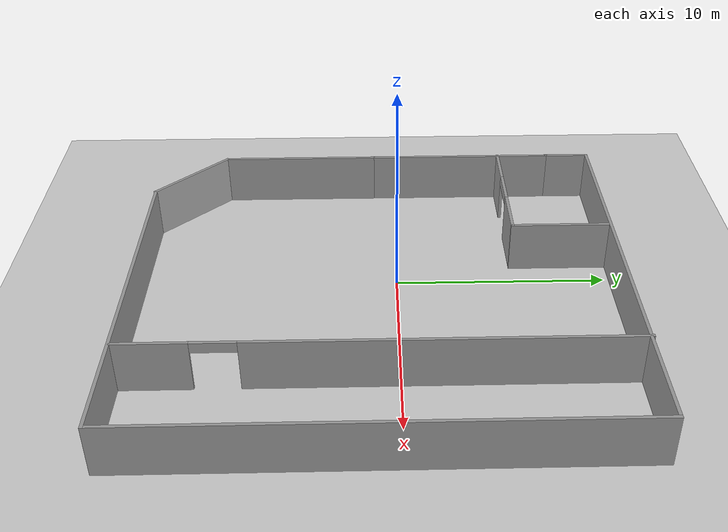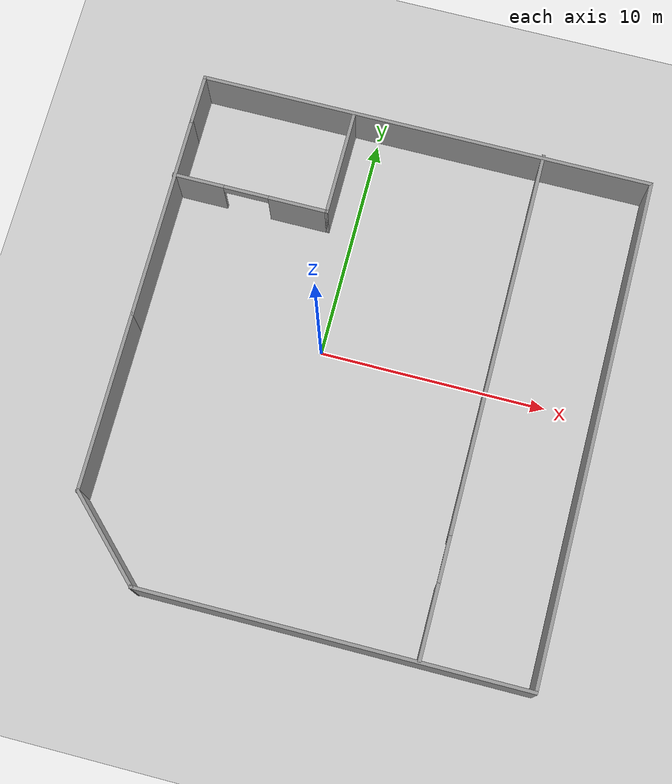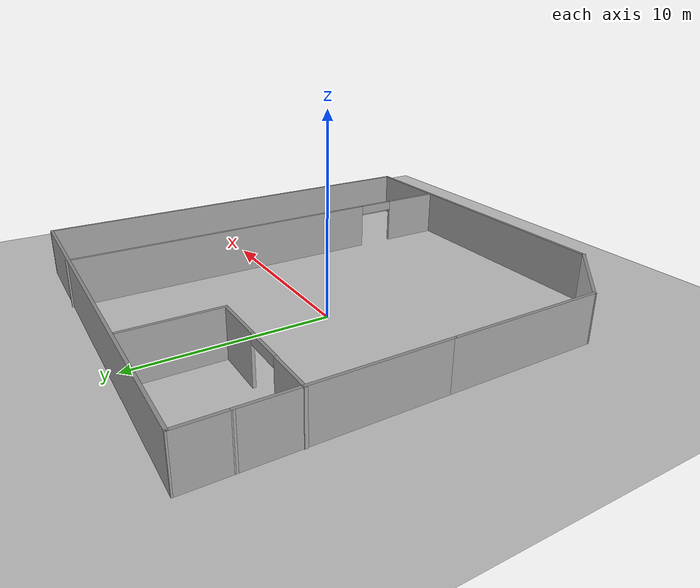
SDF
<sdf version="1.7">
 <world name="default">
  <light name="sun" type="directional">
   <pose>0 0 10 0 -0 0</pose>
   <diffuse>0.8 0.8 0.8 1</diffuse>
   <specular>0.2 0.2 0.2 1</specular>
   <attenuation>
    <range>1000</range>
    <constant>0.9</constant>
    <linear>0.01</linear>
    <quadratic>0.001</quadratic>
   </attenuation>
   <direction>-0.5 0.1 -0.9</direction>
   <spot><inner_angle>0</inner_angle><outer_angle>0</outer_angle><falloff>0</falloff></spot>
  </light>
  <model name="ground_plane">
   <static>1</static>
   <link name="link">
    <collision name="collision">
     <geometry><plane><normal>0 0 1</normal><size>100 100</size></plane></geometry>
     <surface><friction><ode><mu>100</mu><mu2>50</mu2></ode></friction></surface>
    </collision>
    <visual name="visual">
     <cast_shadows>0</cast_shadows>
     <geometry><plane><normal>0 0 1</normal><size>100 100</size></plane></geometry>
     <material>
      <script><uri>file://media/materials/scripts/gazebo.material</uri><name>Gazebo/Grey</name></script>
     </material>
    </visual>
   </link>
  </model>
  <plugin name="ros_interface_plugin" filename="librotors_gazebo_ros_interface_plugin.so"/>
  <plugin name="gazebo_ros_state" filename="libgazebo_ros_state.so"/>
  <gravity>0 0 -9.8</gravity>
  <magnetic_field>6e-06 2.3e-05 -4.2e-05</magnetic_field>
  <atmosphere type="adiabatic"/>
  <physics type="ode">
   <max_step_size>0.001</max_step_size>
   <real_time_factor>1</real_time_factor>
   <real_time_update_rate>1000</real_time_update_rate>
  </physics>
  <scene><ambient>0.4 0.4 0.4 1</ambient><background>0.7 0.7 0.7 1</background><shadows>1</shadows></scene>
  <audio><device>default</device></audio>
  <spherical_coordinates>
   <surface_model>EARTH_WGS84</surface_model>
   <latitude_deg>0</latitude_deg>
   <longitude_deg>0</longitude_deg>
   <elevation>0</elevation>
   <heading_deg>0</heading_deg>
  </spherical_coordinates>
  <model name="test_room">
   <pose>2.05184 -0.832701 0 0 -0 0</pose>
   <link name="Wall_0">
    <collision name="Wall_0_Collision">
     <geometry><box><size>9.25 0.15 2.5</size></box></geometry>
     <pose>0 0 1.25 0 -0 0</pose>
    </collision>
    <visual name="Wall_0_Visual">
     <pose>0 0 1.25 0 -0 0</pose>
     <geometry><box><size>9.25 0.15 2.5</size></box></geometry>
     <material>
      <script><uri>file://media/materials/scripts/gazebo.material</uri><name>Gazebo/Grey</name></script>
      <ambient>1 1 1 1</ambient>
     </material>
     <meta><layer>0</layer></meta>
    </visual>
    <pose>-10.0318 4.4527 0 0 -0 1.5708</pose>
   </link>
   <link name="Wall_14">
    <collision name="Wall_14_Collision">
     <geometry><box><size>4.75 0.15 2.5</size></box></geometry>
     <pose>0 0 1.25 0 -0 0</pose>
    </collision>
    <visual name="Wall_14_Visual">
     <pose>0 0 1.25 0 -0 0</pose>
     <geometry><box><size>4.75 0.15 2.5</size></box></geometry>
     <material>
      <script><uri>file://media/materials/scripts/gazebo.material</uri><name>Gazebo/Grey</name></script>
      <ambient>1 1 1 1</ambient>
     </material>
     <meta><layer>0</layer></meta>
    </visual>
    <pose>-3.22085 8.71157 0 0 -0 1.5708</pose>
   </link>
   <link name="Wall_16">
    <pose>5.26709 0.056055 0 0 -0 -1.5708</pose>
    <visual name="Wall_16_Visual_0">
     <pose>-2.63638 0 1.25 0 -0 0</pose>
     <geometry><box><size>17.2272 0.15 2.5</size></box></geometry>
     <material>
      <script><uri>file://media/materials/scripts/gazebo.material</uri><name>Gazebo/Grey</name></script>
      <ambient>1 1 1 1</ambient>
     </material>
     <meta><layer>0</layer></meta>
    </visual>
    <collision name="Wall_16_Collision_0">
     <geometry><box><size>17.2272 0.15 2.5</size></box></geometry>
     <pose>-2.63638 0 1.25 0 -0 0</pose>
    </collision>
    <visual name="Wall_16_Visual_1">
     <pose>9.61362 0 1.25 0 -0 0</pose>
     <geometry><box><size>3.27276 0.15 2.5</size></box></geometry>
     <material>
      <script><uri>file://media/materials/scripts/gazebo.material</uri><name>Gazebo/Grey</name></script>
      <ambient>1 1 1 1</ambient>
     </material>
     <meta><layer>0</layer></meta>
    </visual>
    <collision name="Wall_16_Collision_1">
     <geometry><box><size>3.27276 0.15 2.5</size></box></geometry>
     <pose>9.61362 0 1.25 0 -0 0</pose>
    </collision>
    <visual name="Wall_16_Visual_2">
     <pose>6.97724 0 2.25 0 -0 0</pose>
     <geometry><box><size>2 0.15 0.5</size></box></geometry>
     <material>
      <script><uri>file://media/materials/scripts/gazebo.material</uri><name>Gazebo/Grey</name></script>
      <ambient>1 1 1 1</ambient>
     </material>
     <meta><layer>0</layer></meta>
    </visual>
    <collision name="Wall_16_Collision_2">
     <geometry><box><size>2 0.15 0.5</size></box></geometry>
     <pose>6.97724 0 2.25 0 -0 0</pose>
    </collision>
   </link>
   <link name="Wall_2">
    <collision name="Wall_2_Collision">
     <geometry><box><size>8 0.15 2.5</size></box></geometry>
     <pose>0 0 1.25 0 -0 0</pose>
    </collision>
    <visual name="Wall_2_Visual">
     <pose>0 0 1.25 0 -0 0</pose>
     <geometry><box><size>8 0.15 2.5</size></box></geometry>
     <material>
      <script><uri>file://media/materials/scripts/gazebo.material</uri><name>Gazebo/Grey</name></script>
      <ambient>1 1 1 1</ambient>
     </material>
     <meta><layer>0</layer></meta>
    </visual>
    <pose>-10.0318 -4.0223 0 0 -0 -1.5708</pose>
   </link>
   <link name="Wall_3">
    <collision name="Wall_3_Collision">
     <geometry><box><size>4.75 0.15 2.5</size></box></geometry>
     <pose>0 0 1.25 0 -0 0</pose>
    </collision>
    <visual name="Wall_3_Visual">
     <pose>0 0 1.25 0 -0 0</pose>
     <geometry><box><size>4.75 0.15 2.5</size></box></geometry>
     <material>
      <script><uri>file://media/materials/scripts/gazebo.material</uri><name>Gazebo/Grey</name></script>
      <ambient>1 1 1 1</ambient>
     </material>
     <meta><layer>0</layer></meta>
    </visual>
    <pose>-8.40549 -9.57364 0 0 -0 -0.785398</pose>
   </link>
   <link name="Wall_4">
    <collision name="Wall_4_Collision">
     <geometry><box><size>17 0.15 2.5</size></box></geometry>
     <pose>0 0 1.25 0 -0 0</pose>
    </collision>
    <visual name="Wall_4_Visual">
     <pose>0 0 1.25 0 -0 0</pose>
     <geometry><box><size>17 0.15 2.5</size></box></geometry>
     <material>
      <script><uri>file://media/materials/scripts/gazebo.material</uri><name>Gazebo/Grey</name></script>
      <ambient>1 1 1 1</ambient>
     </material>
     <meta><layer>0</layer></meta>
    </visual>
    <pose>1.64585 -11.2 0 0 -0 0</pose>
   </link>
   <link name="Wall_5">
    <collision name="Wall_5_Collision">
     <geometry><box><size>22.5 0.15 2.5</size></box></geometry>
     <pose>0 0 1.25 0 -0 0</pose>
    </collision>
    <visual name="Wall_5_Visual">
     <pose>0 0 1.25 0 -0 0</pose>
     <geometry><box><size>22.5 0.15 2.5</size></box></geometry>
     <material>
      <script><uri>file://media/materials/scripts/gazebo.material</uri><name>Gazebo/Grey</name></script>
      <ambient>1 1 1 1</ambient>
     </material>
     <meta><layer>0</layer></meta>
    </visual>
    <pose>10.0709 -0.02499 0 0 -0 1.5708</pose>
   </link>
   <link name="Wall_6">
    <collision name="Wall_6_Collision">
     <geometry><box><size>20.25 0.15 2.5</size></box></geometry>
     <pose>0 0 1.25 0 -0 0</pose>
    </collision>
    <visual name="Wall_6_Visual">
     <pose>0 0 1.25 0 -0 0</pose>
     <geometry><box><size>20.25 0.15 2.5</size></box></geometry>
     <material>
      <script><uri>file://media/materials/scripts/gazebo.material</uri><name>Gazebo/Grey</name></script>
      <ambient>1 1 1 1</ambient>
     </material>
     <meta><layer>0</layer></meta>
    </visual>
    <pose>0.020851 11.15 0 0 -0 3.14159</pose>
   </link>
   <link name="Wall_7">
    <collision name="Wall_7_Collision">
     <geometry><box><size>2.29731 0.15 2.5</size></box></geometry>
     <pose>0 0 1.25 0 -0 0</pose>
    </collision>
    <visual name="Wall_7_Visual">
     <pose>0 0 1.25 0 -0 0</pose>
     <geometry><box><size>2.29731 0.15 2.5</size></box></geometry>
     <material>
      <script><uri>file://media/materials/scripts/gazebo.material</uri><name>Gazebo/Grey</name></script>
      <ambient>1 1 1 1</ambient>
     </material>
     <meta><layer>0</layer></meta>
    </visual>
    <pose>-10.0305 10.0764 0 0 -0 -1.57205</pose>
   </link>
   <link name="Wall_9">
    <pose>-6.64585 6.41157 0 0 -0 0</pose>
    <visual name="Wall_9_Visual_0">
     <pose>-2.34428 0 1.25 0 -0 0</pose>
     <geometry><box><size>2.31145 0.15 2.5</size></box></geometry>
     <material>
      <script><uri>file://media/materials/scripts/gazebo.material</uri><name>Gazebo/Grey</name></script>
      <ambient>1 1 1 1</ambient>
     </material>
     <meta><layer>0</layer></meta>
    </visual>
    <collision name="Wall_9_Collision_0">
     <geometry><box><size>2.31145 0.15 2.5</size></box></geometry>
     <pose>-2.34428 0 1.25 0 -0 0</pose>
    </collision>
    <visual name="Wall_9_Visual_1">
     <pose>2.15572 0 1.25 0 -0 0</pose>
     <geometry><box><size>2.68855 0.15 2.5</size></box></geometry>
     <material>
      <script><uri>file://media/materials/scripts/gazebo.material</uri><name>Gazebo/Grey</name></script>
      <ambient>1 1 1 1</ambient>
     </material>
     <meta><layer>0</layer></meta>
    </visual>
    <collision name="Wall_9_Collision_1">
     <geometry><box><size>2.68855 0.15 2.5</size></box></geometry>
     <pose>2.15572 0 1.25 0 -0 0</pose>
    </collision>
    <visual name="Wall_9_Visual_2">
     <pose>-0.188554 0 2.25 0 -0 0</pose>
     <geometry><box><size>2 0.15 0.5</size></box></geometry>
     <material>
      <script><uri>file://media/materials/scripts/gazebo.material</uri><name>Gazebo/Grey</name></script>
      <ambient>1 1 1 1</ambient>
     </material>
     <meta><layer>0</layer></meta>
    </visual>
    <collision name="Wall_9_Collision_2">
     <geometry><box><size>2 0.15 0.5</size></box></geometry>
     <pose>-0.188554 0 2.25 0 -0 0</pose>
    </collision>
   </link>
   <static>1</static>
  </model>
 </world>
</sdf>
